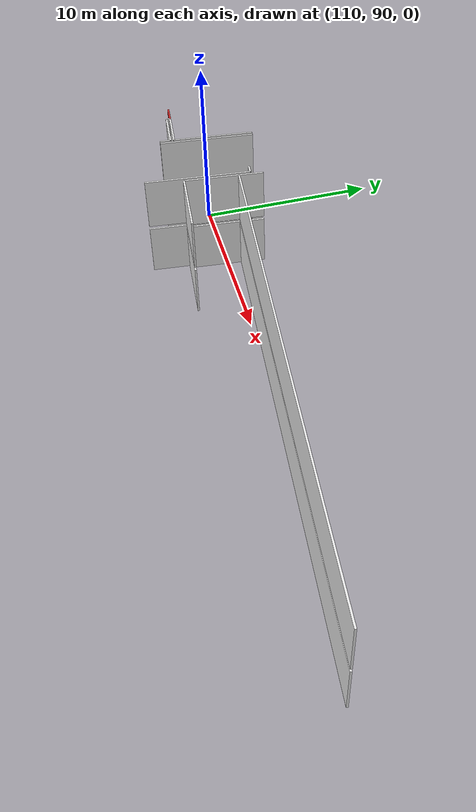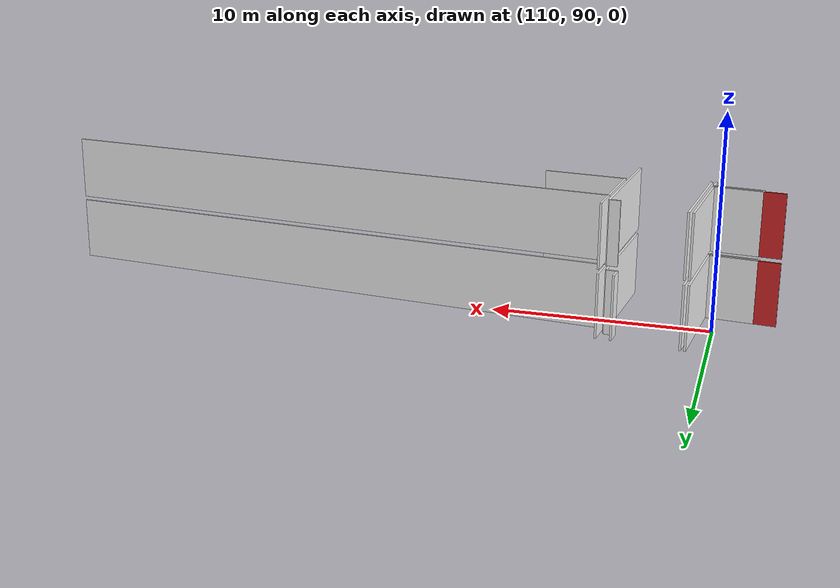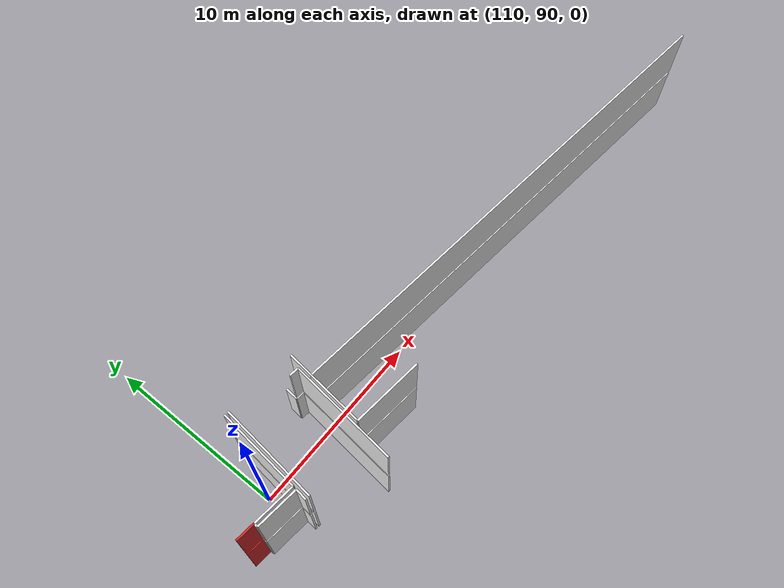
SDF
<sdf version="1.6">
 <world name="default">
  <model name="wall_107.8_88.4_0.0">
   <static>true</static>
   <pose>107.78999999997905 88.4000000001397 1.5 0 0 -0.09966865258337218</pose>
   <link name="link">
    <visual name="visual">
     <geometry><box><size>1.004987562121356 0.1 3</size></box></geometry>
     <material>
      <script><uri>file://media/materials/scripts/gazebo.material</uri><name>Gazebo/Red</name></script>
     </material>
    </visual>
   </link>
  </model>
  <model name="wall_110.9_89.9_0.0">
   <static>true</static>
   <pose>110.875 89.93999999994412 1.5 0 0 1.4703748041183955</pose>
   <link name="link">
    <visual name="visual">
     <geometry><box><size>5.286634089633801 0.1 3</size></box></geometry>
     <material>
      <script><uri>file://media/materials/scripts/gazebo.material</uri><name>Gazebo/White</name></script>
     </material>
    </visual>
   </link>
  </model>
  <model name="wall_114.1_91.9_0.0">
   <static>true</static>
   <pose>114.14499999998952 91.91499999980442 1.5 0 0 -1.6718996985493473</pose>
   <link name="link">
    <visual name="visual">
     <geometry><box><size>0.693541635321099 0.1 3</size></box></geometry>
     <material>
      <script><uri>file://media/materials/scripts/gazebo.material</uri><name>Gazebo/White</name></script>
     </material>
    </visual>
   </link>
  </model>
  <model name="wall_114.4_91.5_0.0">
   <static>true</static>
   <pose>114.35499999998137 91.5449999999255 1.5 0 0 -0.1016888513887821</pose>
   <link name="link">
    <visual name="visual">
     <geometry><box><size>0.49254441421281653 0.1 3</size></box></geometry>
     <material>
      <script><uri>file://media/materials/scripts/gazebo.material</uri><name>Gazebo/White</name></script>
     </material>
    </visual>
   </link>
  </model>
  <model name="wall_114.3_88.6_0.0">
   <static>true</static>
   <pose>114.30999999999767 88.64500000001863 1.5 0 0 -1.671325860608872</pose>
   <link name="link">
    <visual name="visual">
     <geometry><box><size>5.7791781422578925 0.1 3</size></box></geometry>
     <material>
      <script><uri>file://media/materials/scripts/gazebo.material</uri><name>Gazebo/White</name></script>
     </material>
    </visual>
   </link>
  </model>
  <model name="wall_109.4_88.2_0.0">
   <static>true</static>
   <pose>109.38499999998021 88.23999999999069 1.5 0 0 -0.10012073211888467</pose>
   <link name="link">
    <visual name="visual">
     <geometry><box><size>2.201022489685271 0.1 3</size></box></geometry>
     <material>
      <script><uri>file://media/materials/scripts/gazebo.material</uri><name>Gazebo/White</name></script>
     </material>
    </visual>
   </link>
  </model>
  <model name="wall_110.7_90.4_0.0">
   <static>true</static>
   <pose>110.7049999999872 90.35999999986961 1.5 0 0 1.4702397722029048</pose>
   <link name="link">
    <visual name="visual">
     <geometry><box><size>4.482644308851437 0.1 3</size></box></geometry>
     <material>
      <script><uri>file://media/materials/scripts/gazebo.material</uri><name>Gazebo/White</name></script>
     </material>
    </visual>
   </link>
  </model>
  <model name="wall_108.3_88.2_0.0">
   <static>true</static>
   <pose>108.27999999999884 88.25 1.5 0 0 -1.6704649789979018</pose>
   <link name="link">
    <visual name="visual">
     <geometry><box><size>0.20099751260381943 0.1 3</size></box></geometry>
     <material>
      <script><uri>file://media/materials/scripts/gazebo.material</uri><name>Gazebo/White</name></script>
     </material>
    </visual>
   </link>
  </model>
  <model name="wall_109.4_88.0_0.0">
   <static>true</static>
   <pose>109.36500000001979 88.04000000003725 1.5 0 0 -0.10012073190837828</pose>
   <link name="link">
    <visual name="visual">
     <geometry><box><size>2.2010224896387265 0.1 3</size></box></geometry>
     <material>
      <script><uri>file://media/materials/scripts/gazebo.material</uri><name>Gazebo/White</name></script>
     </material>
    </visual>
   </link>
  </model>
  <model name="wall_110.4_87.6_0.0">
   <static>true</static>
   <pose>110.43000000002212 87.63000000012107 1.5 0 0 -1.6704649792668482</pose>
   <link name="link">
    <visual name="visual">
     <geometry><box><size>0.6029925373596918 0.1 3</size></box></geometry>
     <material>
      <script><uri>file://media/materials/scripts/gazebo.material</uri><name>Gazebo/White</name></script>
     </material>
    </visual>
   </link>
  </model>
  <model name="wall_128.3_89.5_0.0">
   <static>true</static>
   <pose>128.32499999998254 89.47999999998137 1.5 0 0 3.0411593638960905</pose>
   <link name="link">
    <visual name="visual">
     <geometry><box><size>27.327709380797934 0.1 3</size></box></geometry>
     <material>
      <script><uri>file://media/materials/scripts/gazebo.material</uri><name>Gazebo/White</name></script>
     </material>
    </visual>
   </link>
  </model>
  <model name="wall_114.6_89.4_0.0">
   <static>true</static>
   <pose>114.5799999999872 89.35499999998137 1.5 0 0 -1.6707961050904907</pose>
   <link name="link">
    <visual name="visual">
     <geometry><box><size>3.005012479396658 0.1 3</size></box></geometry>
     <material>
      <script><uri>file://media/materials/scripts/gazebo.material</uri><name>Gazebo/White</name></script>
     </material>
    </visual>
   </link>
  </model>
  <model name="wall_116.3_87.7_0.0">
   <static>true</static>
   <pose>116.2949999999837 87.67500000004657 1.5 0 0 -0.09887226286603688</pose>
   <link name="link">
    <visual name="visual">
     <geometry><box><size>3.748306284123425 0.1 3</size></box></geometry>
     <material>
      <script><uri>file://media/materials/scripts/gazebo.material</uri><name>Gazebo/White</name></script>
     </material>
    </visual>
   </link>
  </model>
  <model name="wall_114.8_91.5_0.0">
   <static>true</static>
   <pose>114.79999999998836 91.52000000001863 1.5 0 0 1.4666963886634918</pose>
   <link name="link">
    <visual name="visual">
     <geometry><box><size>1.3472935833011899 0.1 3</size></box></geometry>
     <material>
      <script><uri>file://media/materials/scripts/gazebo.material</uri><name>Gazebo/White</name></script>
     </material>
    </visual>
   </link>
  </model>
  <model name="wall_107.8_88.4_3.2">
   <static>true</static>
   <pose>107.78999999997905 88.4000000001397 4.7 0 0 -0.09966865258337218</pose>
   <link name="link">
    <visual name="visual">
     <geometry><box><size>1.004987562121356 0.1 3</size></box></geometry>
     <material>
      <script><uri>file://media/materials/scripts/gazebo.material</uri><name>Gazebo/Red</name></script>
     </material>
    </visual>
   </link>
  </model>
  <model name="wall_110.9_89.9_3.2">
   <static>true</static>
   <pose>110.875 89.93999999994412 4.7 0 0 1.4703748041183955</pose>
   <link name="link">
    <visual name="visual">
     <geometry><box><size>5.286634089633801 0.1 3</size></box></geometry>
     <material>
      <script><uri>file://media/materials/scripts/gazebo.material</uri><name>Gazebo/White</name></script>
     </material>
    </visual>
   </link>
  </model>
  <model name="wall_114.4_91.5_3.2">
   <static>true</static>
   <pose>114.35499999998137 91.5449999999255 4.7 0 0 -0.1016888513887821</pose>
   <link name="link">
    <visual name="visual">
     <geometry><box><size>0.49254441421281653 0.1 3</size></box></geometry>
     <material>
      <script><uri>file://media/materials/scripts/gazebo.material</uri><name>Gazebo/White</name></script>
     </material>
    </visual>
   </link>
  </model>
  <model name="wall_114.3_88.6_3.2">
   <static>true</static>
   <pose>114.30999999999767 88.64500000001863 4.7 0 0 -1.671325860608872</pose>
   <link name="link">
    <visual name="visual">
     <geometry><box><size>5.7791781422578925 0.1 3</size></box></geometry>
     <material>
      <script><uri>file://media/materials/scripts/gazebo.material</uri><name>Gazebo/White</name></script>
     </material>
    </visual>
   </link>
  </model>
  <model name="wall_109.4_88.2_3.2">
   <static>true</static>
   <pose>109.38499999998021 88.23999999999069 4.7 0 0 -0.10012073211888467</pose>
   <link name="link">
    <visual name="visual">
     <geometry><box><size>2.201022489685271 0.1 3</size></box></geometry>
     <material>
      <script><uri>file://media/materials/scripts/gazebo.material</uri><name>Gazebo/White</name></script>
     </material>
    </visual>
   </link>
  </model>
  <model name="wall_110.7_90.4_3.2">
   <static>true</static>
   <pose>110.7049999999872 90.35999999986961 4.7 0 0 1.4702397722029048</pose>
   <link name="link">
    <visual name="visual">
     <geometry><box><size>4.482644308851437 0.1 3</size></box></geometry>
     <material>
      <script><uri>file://media/materials/scripts/gazebo.material</uri><name>Gazebo/White</name></script>
     </material>
    </visual>
   </link>
  </model>
  <model name="wall_108.3_88.2_3.2">
   <static>true</static>
   <pose>108.27999999999884 88.25 4.7 0 0 -1.6704649789979018</pose>
   <link name="link">
    <visual name="visual">
     <geometry><box><size>0.20099751260381943 0.1 3</size></box></geometry>
     <material>
      <script><uri>file://media/materials/scripts/gazebo.material</uri><name>Gazebo/White</name></script>
     </material>
    </visual>
   </link>
  </model>
  <model name="wall_109.4_88.0_3.2">
   <static>true</static>
   <pose>109.36500000001979 88.04000000003725 4.7 0 0 -0.10012073190837828</pose>
   <link name="link">
    <visual name="visual">
     <geometry><box><size>2.2010224896387265 0.1 3</size></box></geometry>
     <material>
      <script><uri>file://media/materials/scripts/gazebo.material</uri><name>Gazebo/White</name></script>
     </material>
    </visual>
   </link>
  </model>
  <model name="wall_110.4_87.6_3.2">
   <static>true</static>
   <pose>110.43000000002212 87.63000000012107 4.7 0 0 -1.6704649792668482</pose>
   <link name="link">
    <visual name="visual">
     <geometry><box><size>0.6029925373596918 0.1 3</size></box></geometry>
     <material>
      <script><uri>file://media/materials/scripts/gazebo.material</uri><name>Gazebo/White</name></script>
     </material>
    </visual>
   </link>
  </model>
  <model name="wall_128.3_89.5_3.2">
   <static>true</static>
   <pose>128.32499999998254 89.47999999998137 4.7 0 0 3.0411593638960905</pose>
   <link name="link">
    <visual name="visual">
     <geometry><box><size>27.327709380797934 0.1 3</size></box></geometry>
     <material>
      <script><uri>file://media/materials/scripts/gazebo.material</uri><name>Gazebo/White</name></script>
     </material>
    </visual>
   </link>
  </model>
  <model name="wall_114.6_89.4_3.2">
   <static>true</static>
   <pose>114.5799999999872 89.35499999998137 4.7 0 0 -1.6707961050904907</pose>
   <link name="link">
    <visual name="visual">
     <geometry><box><size>3.005012479396658 0.1 3</size></box></geometry>
     <material>
      <script><uri>file://media/materials/scripts/gazebo.material</uri><name>Gazebo/White</name></script>
     </material>
    </visual>
   </link>
  </model>
  <model name="wall_116.3_87.7_3.2">
   <static>true</static>
   <pose>116.2949999999837 87.67500000004657 4.7 0 0 -0.09887226286603688</pose>
   <link name="link">
    <visual name="visual">
     <geometry><box><size>3.748306284123425 0.1 3</size></box></geometry>
     <material>
      <script><uri>file://media/materials/scripts/gazebo.material</uri><name>Gazebo/White</name></script>
     </material>
    </visual>
   </link>
  </model>
  <model name="wall_114.8_91.5_3.2">
   <static>true</static>
   <pose>114.79999999998836 91.52000000001863 4.7 0 0 1.4666963886634918</pose>
   <link name="link">
    <visual name="visual">
     <geometry><box><size>1.3472935833011899 0.1 3</size></box></geometry>
     <material>
      <script><uri>file://media/materials/scripts/gazebo.material</uri><name>Gazebo/White</name></script>
     </material>
    </visual>
   </link>
  </model>
 </world>
</sdf>
